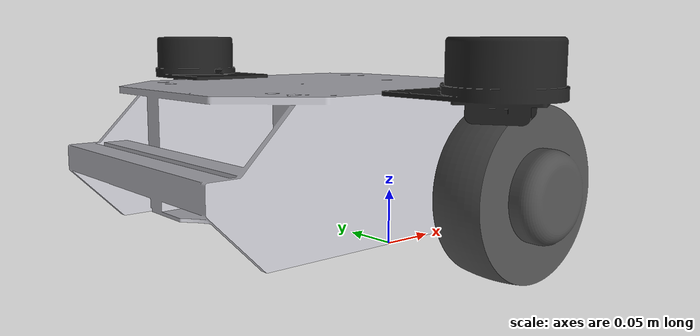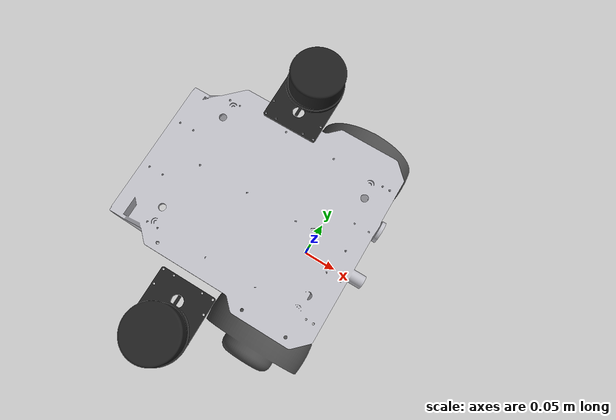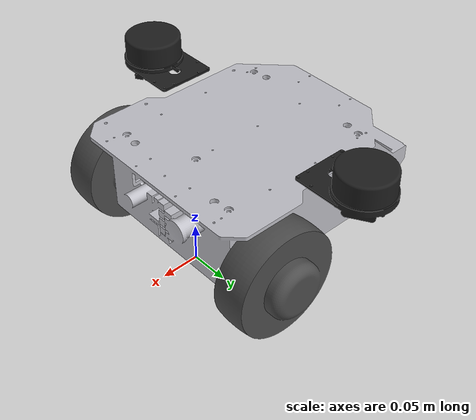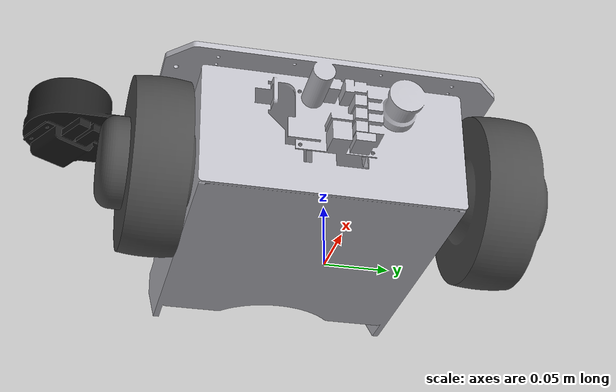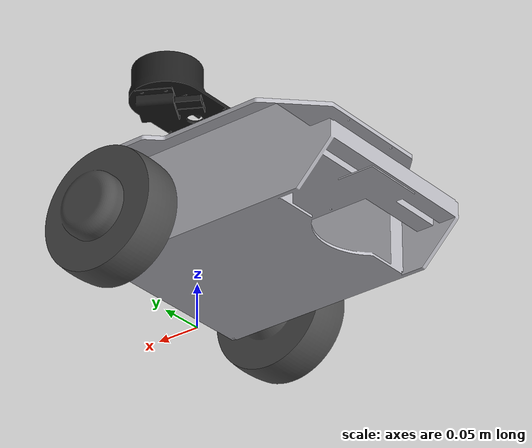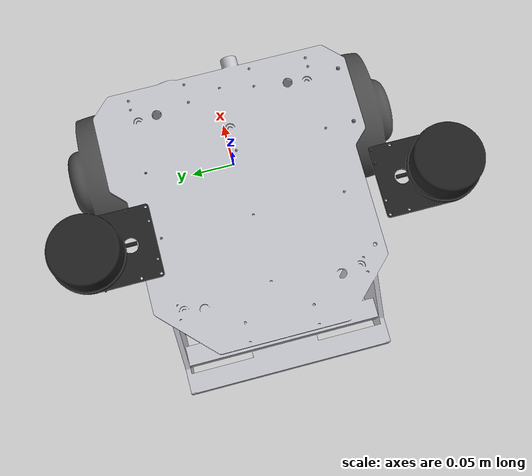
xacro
<?xml version="1.0"?>
<robot name="mega3" xmlns:xacro="http://www.ros.org/wiki/xacro">

  <xacro:include filename="$(find megarover_description)/urdf/mega3_base_model.xacro" />
  <xacro:include filename="$(find megarover_description)/urdf/mega3.gazebo" />
  <!-- OPTION: LRF TG30 -->
  <xacro:include filename="$(find vs_rover_options_description)/urdf/lrf/tg30_mega3.xacro" />
  <!-- OPTION: bumper sensor -->
  <!-- OPTION: camera stay -->
  <!-- OPTION: Intel Realsense depth camera D435i (camera stay required) -->
  <!-- OPTION: AMIR 740 (disabled by default because of interference with camera stay)-->

</robot>

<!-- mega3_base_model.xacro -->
<robot name="mega3" xmlns:xacro="http://www.ros.org/wiki/xacro">

  <xacro:include filename="$(find megarover_description)/urdf/materials.xacro" />
  <xacro:include filename="$(find megarover_description)/urdf/mega3_base_model.gazebo" />
  <!-- OPTION: LRF TG30 -->
  <!-- OPTION: bumper sensor -->

  <link name="base_footprint" />

  <joint name="base_joint" type="fixed">
    <parent link="base_footprint" />
    <child link="base_link" />
    <origin xyz="-0.1 0 0" rpy="0 0 -1.5708" />
  </joint>

  <link name="base_link">
    <inertial>
      <origin xyz="-0.0001512201285105937 -3.420007213019073e-05 0.08388833658828038" rpy="0 0 0" />
      <mass value="11.744482" />
      <inertia ixx="0.091465" iyy="0.06435" izz="0.1253"
        ixy="0.001018" iyz="-0.002369"
        ixz="0.000233" />
    </inertial>
    <visual>
      <origin xyz="0 0 0" rpy="0 0 0" />
      <geometry>
        <mesh filename="package://megarover_description/meshes/mega3/base_link.stl" scale="0.001 0.001 0.001" />
      </geometry>
      <material name="silver" />
    </visual>
    <collision>
      <origin xyz="0 0 0" rpy="0 0 0" />
      <geometry>
        <mesh filename="package://megarover_description/meshes/mega3/base_link.stl" scale="0.001 0.001 0.001" />
      </geometry>
    </collision>
  </link>

  <joint name="left_wheel_joint" type="continuous">
    <origin xyz="-0.136 0.1 0.07" rpy="0 -1.5708 0" />
    <parent link="base_link" />
    <child link="left_wheel_1" />
    <axis xyz="0.0 0.0 1.0" />
  </joint>

  <link name="left_wheel_1">
    <inertial>
      <origin xyz="0.0 0.0 0.00213" rpy="0 1.5708 0" />
      <mass value="1.239934" />
      <inertia ixx="0.002474" iyy="0.00174" izz="0.00174"
        ixy="0.000" iyz="0.000"
        ixz="-0.000" />
    </inertial>
    <visual>
      <origin xyz="-0.07 -0.1 -0.136" rpy="0 1.5708 0" />
      <geometry>
        <mesh filename="package://megarover_description/meshes/mega3/left_wheel_1.stl" scale="0.001 0.001 0.001" />
      </geometry>
      <material name="dark_grey" />
    </visual>
    <collision>
      <origin xyz="-0.07 -0.1 -0.136" rpy="0 1.5708 0" />
      <geometry>
        <mesh filename="package://megarover_description/meshes/mega3/left_wheel_1.stl" scale="0.001 0.001 0.001" />
      </geometry>
    </collision>
  </link>

  <joint name="right_wheel_joint" type="continuous">
    <origin xyz="0.136 0.1 0.07" rpy="0 -1.5708 0" />
    <parent link="base_link" />
    <child link="right_wheel_1" />
    <axis xyz="0.0 0.0 1.0" />
  </joint>

  <link name="right_wheel_1">
    <inertial>
      <origin xyz="0 0 -0.00213" rpy="0 1.5708 0" />
      <mass value="1.239934" />
      <inertia ixx="0.002474" iyy="0.00174" izz="0.00174"
        ixy="-0.000" iyz="-0.000"
        ixz="-0.000" />
    </inertial>
    <visual>
      <origin xyz="-0.07 -0.1 0.136" rpy="0 1.5708 0" />
      <geometry>
        <mesh filename="package://megarover_description/meshes/mega3/right_wheel_1.stl" scale="0.001 0.001 0.001" />
      </geometry>
      <material name="dark_grey" />
    </visual>
    <collision>
      <origin xyz="-0.07 -0.1 0.136" rpy="0 1.5708 0" />
      <geometry>
        <mesh filename="package://megarover_description/meshes/mega3/right_wheel_1.stl" scale="0.001 0.001 0.001" />
      </geometry>
    </collision>
  </link>

</robot>

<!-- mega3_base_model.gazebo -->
<robot name="mega3" xmlns:xacro="http://www.ros.org/wiki/xacro">

  <xacro:property name="body_color" value="Gazebo/Silver" />
  <xacro:property name="wheel_color" value="Gazebo/DarkGrey" />

  <gazebo reference="base_link">
    <material>${body_color}</material>
    <mu1>0.1</mu1>
    <mu2>0.1</mu2>
    <kp>1e6</kp>
    <kd>100.0</kd>
    <minDepth>0.001</minDepth>
    <maxVel>1.0</maxVel>
  </gazebo>

  <gazebo reference="right_wheel_1">
    <mu1>1.0</mu1>
    <mu2>1.0</mu2>
    <fdir1>1 0 0</fdir1>
    <kp>1e6</kp>
    <kd>10.0</kd>
    <minDepth>0.0001</minDepth>
    <maxVel>0.1</maxVel>
    <material>${wheel_color}</material>
  </gazebo>

  <gazebo reference="left_wheel_1">
    <mu1>1.0</mu1>
    <mu2>1.0</mu2>
    <fdir1>1 0 0</fdir1>
    <kp>1e6</kp>
    <kd>10.0</kd>
    <minDepth>0.0001</minDepth>
    <maxVel>0.1</maxVel>
    <material>${wheel_color}</material>
  </gazebo>

  <!-- diff drive plugin -->
  <gazebo>
    <plugin name="megarover3_controller" filename="libgazebo_ros_diff_drive.so">
      <commandTopic>cmd_vel</commandTopic>
      <odometryTopic>odom</odometryTopic>
      <odometryFrame>odom</odometryFrame>
      <odometrySource>world</odometrySource>
      <publishOdomTF>true</publishOdomTF>
      <robotBaseFrame>base_footprint</robotBaseFrame>
      <publishWheelTF>false</publishWheelTF>
      <publishTf>true</publishTf>
      <publishWheelJointState>true</publishWheelJointState>
      <legacyMode>false</legacyMode>
      <updateRate>30</updateRate>
      <leftJoint>left_wheel_joint</leftJoint>
      <rightJoint>right_wheel_joint</rightJoint>
      <wheelSeparation>0.272</wheelSeparation>
      <wheelDiameter>0.140</wheelDiameter>
      <wheelAcceleration>1.0</wheelAcceleration>
      <wheelTorque>30</wheelTorque>
      <rosDebugLevel>na</rosDebugLevel>
    </plugin>
  </gazebo>

</robot>

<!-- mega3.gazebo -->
<robot name="mega3" xmlns:xacro="http://www.ros.org/wiki/xacro">

  <xacro:property name="body_color" value="Gazebo/Silver" />
  <xacro:property name="wheel_color" value="Gazebo/DarkGrey" />

  <gazebo reference="base_link">
    <material>${body_color}</material>
    <mu1>0.1</mu1>
    <mu2>0.1</mu2>
    <kp>1e6</kp>
    <kd>100.0</kd>
    <minDepth>0.001</minDepth>
    <maxVel>1.0</maxVel>
  </gazebo>

  <gazebo reference="right_wheel_1">
    <mu1>1.0</mu1>
    <mu2>1.0</mu2>
    <fdir1>1 0 0</fdir1>
    <kp>1e6</kp>
    <kd>10.0</kd>
    <minDepth>0.0001</minDepth>
    <maxVel>0.1</maxVel>
    <material>${wheel_color}</material>
  </gazebo>

  <gazebo reference="left_wheel_1">
    <mu1>1.0</mu1>
    <mu2>1.0</mu2>
    <fdir1>1 0 0</fdir1>
    <kp>1e6</kp>
    <kd>10.0</kd>
    <minDepth>0.0001</minDepth>
    <maxVel>0.1</maxVel>
    <material>${wheel_color}</material>
  </gazebo>

  <!-- diff_drive plugin -->
  <gazebo>
    <plugin name="mega3_diff_drive" filename="libgazebo_ros_diff_drive.so">
      <ros>
      </ros>

      <update_rate>30</update_rate>

      <!-- wheels -->
      <left_joint>left_wheel_joint</left_joint>
      <right_joint>right_wheel_joint</right_joint>

      <!-- kinematics -->
      <wheel_separation>0.242</wheel_separation>
      <wheel_diameter>0.140</wheel_diameter>

      <!-- limits -->
      <max_wheel_torque>30</max_wheel_torque>
      <max_wheel_acceleration>1.0</max_wheel_acceleration>

      <command_topic>cmd_vel</command_topic>

      <!-- output -->
      <publish_odom>true</publish_odom>
      <publish_odom_tf>true</publish_odom_tf>
      <publish_wheel_tf>false</publish_wheel_tf>

      <odometry_topic>odom</odometry_topic>
      <odometry_frame>odom</odometry_frame>
      <robot_base_frame>base_footprint</robot_base_frame>
    </plugin>
  </gazebo>

  <!-- joint_state_publisher plugin -->
  <gazebo>
      <plugin name="mega3_joint_state" filename="libgazebo_ros_joint_state_publisher.so">
      <ros>
        <remapping>~/out:=joint_states</remapping>
      </ros>
      <update_rate>30</update_rate>
      <joint_name>left_wheel_joint</joint_name>
      <joint_name>right_wheel_joint</joint_name>
    </plugin>
  </gazebo>

</robot>

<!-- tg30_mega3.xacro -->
<robot name="lrf_tg30_mega3" xmlns:xacro="http://ros.org/wiki/xacro">
  <xacro:include filename="$(find vs_rover_options_description)/urdf/lrf/tg30_mega3.gazebo" />

  <xacro:property name="tg30_lrf_front_x_offset" value="0.1990" />
  <xacro:property name="tg30_lrf_front_y_offset" value="0.0" />
  <xacro:property name="tg30_lrf_front_z_offset" value="0.1809" />
  <xacro:property name="tg30_lrf_back_x_offset" value="-0.1690" />
  <xacro:property name="tg30_lrf_back_y_offset" value="0.0" />
  <xacro:property name="tg30_lrf_back_z_offset" value="0.1809" />
  <xacro:property name="tg30_center_of_mass_x" value="-0.004299" />
  <xacro:property name="tg30_center_of_mass_y" value="-0.000337" />
  <xacro:property name="tg30_center_of_mass_z" value="-0.018037" />

  <joint name="front_lrf_joint" type="fixed">
    <parent link="base_link" />
    <child link="front_lrf_link" />
    <origin xyz="${tg30_lrf_front_x_offset} ${tg30_lrf_front_y_offset} ${tg30_lrf_front_z_offset}" rpy="0 0 0" />
  </joint>

  <link name="front_lrf_link">
    <inertial>
      <origin xyz="${tg30_center_of_mass_x} ${tg30_center_of_mass_y} ${tg30_center_of_mass_z}" rpy="0 0 0" />
      <mass value="0.200" />
      <inertia ixx="0.0001205" iyy="0.0001561" izz="0.0001977"
        ixy="0.00" iyz="0.00"
        ixz="0.00" />
    </inertial>
    <visual>
      <origin xyz="0 0 0" rpy="0 0 0" />
      <geometry>
        <mesh filename="package://vs_rover_options_description/meshes/lrf/tg30.stl" scale="0.001 0.001 0.001" />
      </geometry>
      <material name="black" />
    </visual>
    <collision>
      <origin xyz="0 0 0" rpy="0 0 0" />
      <geometry>
        <mesh filename="package://vs_rover_options_description/meshes/lrf/tg30.stl" scale="0.001 0.001 0.001" />
      </geometry>
    </collision>
  </link>

  <joint name="back_lrf_joint" type="fixed">
    <parent link="base_link" />
    <child link="back_lrf_link" />
    <origin xyz="${tg30_lrf_back_x_offset} ${tg30_lrf_back_y_offset} ${tg30_lrf_back_z_offset}" rpy="0 0 ${-pi}" />
  </joint>

  <link name="back_lrf_link">
    <inertial>
      <origin xyz="${tg30_center_of_mass_x} ${tg30_center_of_mass_y} ${tg30_center_of_mass_z}" rpy="0 0 0" />
      <mass value="0.200" />
      <inertia ixx="0.0001205" iyy="0.0001561" izz="0.0001977"
        ixy="0.00" iyz="0.00"
        ixz="0.00" />
    </inertial>
    <visual>
      <origin xyz="0 0 0" rpy="0 0 0" />
      <geometry>
        <mesh filename="package://vs_rover_options_description/meshes/lrf/tg30.stl" scale="0.001 0.001 0.001" />
      </geometry>
      <material name="black" />
    </visual>
    <collision>
      <origin xyz="0 0 0" rpy="0 0 0" />
      <geometry>
        <mesh filename="package://vs_rover_options_description/meshes/lrf/tg30.stl" scale="0.001 0.001 0.001" />
      </geometry>
    </collision>
  </link>

</robot>

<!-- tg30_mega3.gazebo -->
<robot name="lrf_tg30_mega3" xmlns:xacro="http://www.ros.org/wiki/xacro">

  <xacro:arg name="front_laser_visual" default="false" />
  <xacro:arg name="back_laser_visual" default="false" />

  <xacro:property name="lrf_color" value="Gazebo/FlatBlack" />
  <xacro:property name="DEG_TO_RAD" value="0.01745329251994329577" />
  <xacro:property name="LRF_ANGLE" value="172" />

  <gazebo reference="front_lrf_link">
    <material>${lrf_color}</material>
    <selfCollide>true</selfCollide>
    <sensor name="tg30_lidar_front" type="ray">
        <always_on>true</always_on>
        <visualize>$(arg front_laser_visual)</visualize>
        <pose>0 0 0 0 0 0</pose>
        <update_rate>12</update_rate>
        <ray>
          <scan>
            <horizontal>
              <samples>360</samples>
              <resolution>1.0</resolution>
              <min_angle>${-LRF_ANGLE*DEG_TO_RAD}</min_angle>
              <max_angle>${ LRF_ANGLE*DEG_TO_RAD}</max_angle>
            </horizontal>
          </scan>
          <range>
            <min>0.05</min>
            <max>30.0</max>
            <resolution>0.01</resolution>
          </range>
          <noise>
            <type>gaussian</type>
            <mean>0.0</mean>
            <stddev>0.01</stddev>
          </noise>
        </ray>
        <plugin name="mega3_front_laserscan" filename="libgazebo_ros_ray_sensor.so">
          <ros>
            <remapping>~/out:=scan</remapping>
          </ros>
          <output_type>sensor_msgs/LaserScan</output_type>
          <frame_name>front_lrf_link</frame_name>
        </plugin>
      </sensor>
  </gazebo>

  <gazebo reference="back_lrf_link">
    <material>${lrf_color}</material>
    <selfCollide>true</selfCollide>
    <sensor name="tg30_lidar_back" type="ray">
        <always_on>true</always_on>
        <visualize>$(arg back_laser_visual)</visualize>
        <pose>0 0 0 0 0 0</pose>
        <update_rate>12</update_rate>
        <ray>
          <scan>
            <horizontal>
              <samples>360</samples>
              <resolution>1.0</resolution>
              <min_angle>${-LRF_ANGLE*DEG_TO_RAD}</min_angle>
              <max_angle>${ LRF_ANGLE*DEG_TO_RAD}</max_angle>
            </horizontal>
          </scan>
          <range>
            <min>0.05</min>
            <max>30.0</max>
            <resolution>0.01</resolution>
          </range>
          <noise>
            <type>gaussian</type>
            <mean>0.0</mean>
            <stddev>0.01</stddev>
          </noise>
        </ray>
        <plugin name="mega3_back_laserscan" filename="libgazebo_ros_ray_sensor.so">
          <ros>
            <remapping>~/out:=back_scan</remapping>
          </ros>
          <output_type>sensor_msgs/LaserScan</output_type>
          <frame_name>back_lrf_link</frame_name>
        </plugin>
      </sensor>
  </gazebo>
</robot>
